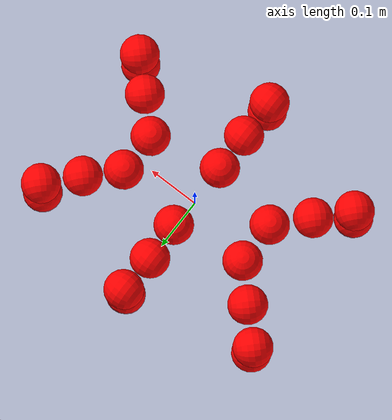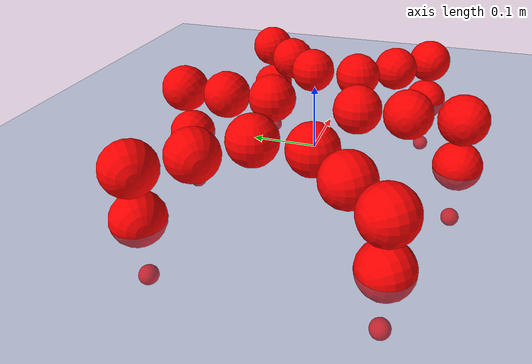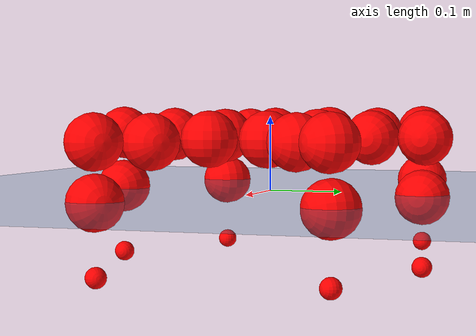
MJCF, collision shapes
<mujoco model="Golem">
  <compiler angle="radian" assetdir="assets" balanceinertia="true" inertiafromgeom="false"/>

  <option timestep="0.005" density="1.2" viscosity="2e-05"/>

  <size nkey="1"/>

  <visual>
    <quality shadowsize="8192"/>
    <map shadowclip="0.5"/>
  </visual>

  <default>
    <default class="/">
      <joint armature="0.01" damping="0.01" frictionloss="0.01"/>
      <geom contype="0" conaffinity="0" group="1" solref="-1000 -80"/>
      <site size="0.01 0.005 0.005" group="5"/>
      <general forcelimited="true" biastype="affine" gainprm="25" biasprm="0 -25 -0.5"/>
      <default class="visual">
        <geom type="mesh" group="2"/>
      </default>
      <default class="collision">
        <geom group="3"/>
      </default>
      <default class="foot">
        <geom size="0.01 0 0" condim="6" group="4" priority="1" solimp="0.015 1 0.01"/>
      </default>
      <default class="reward_collision_sphere">
        <geom group="5" rgba="1 0 0 1"/>
      </default>
    </default>
  </default>

  <asset>
    <texture type="skybox" colorspace="auto" name="//unnamed_texture_0" builtin="gradient" rgb1="0.95 0.95 0.95" rgb2="0.95 0.95 0.95" width="100" height="600"/>
    <texture type="2d" colorspace="auto" name="texplane" builtin="checker" rgb1="0.345 0.575 0.748" rgb2="0.345 0.575 0.748" markrgb="1 1 1" width="512" height="512"/>
    <material name="MatPlane" class="/" texture="texplane" texuniform="true" texrepeat="2 2" specular="0.9"/>
    <mesh name="body" class="/" file="body.stl" scale="0.001 0.001 0.001"/>
    <mesh name="coxa" class="/" file="coxa.stl" scale="0.001 0.001 0.001"/>
    <mesh name="femur" class="/" file="femur.stl" scale="0.001 0.001 0.001"/>
    <mesh name="tibia" class="/" file="tibia.stl" scale="0.001 0.001 0.001"/>
    <mesh name="tarsus" class="/" file="tarsus.stl" scale="0.001 0.001 0.001"/>
  </asset>

  <worldbody>
    <geom name="floor" class="/" size="100 100 0.125" type="plane" group="0" material="MatPlane"/>
    <light name="toplight_shadow" class="/" pos="0 0 5" dir="0.0990148 0.0990148 -0.990148" type="directional" ambient="0.04 0.04 0.04" diffuse="0.55 0.55 0.55" specular="0.12 0.12 0.12"/>
    <light name="toplight_fill" class="/" pos="0 0 5" dir="0.0990148 0.0990148 -0.990148" type="directional" castshadow="false" ambient="0.04 0.04 0.04" diffuse="0.3 0.3 0.3" specular="0.08 0.08 0.08"/>
    <body name="trunk" pos="-0.00281063 0.000523088 -0.000804331" quat="1 0.000571666 -0.000762958 -5.32753e-06">
      <inertial pos="0.00100681 0.00113785 -0.000231131" quat="0.999914 -0.0122762 -0.00251389 -0.00392077" mass="2.72703" diaginertia="0.00468215 0.00192077 0.0203294"/>
      <joint name="//unnamed_joint_0" type="free"/>
      <geom name="//unnamed_geom_1" class="/" pos="0 0 0.0741826" quat="1 0 0 0" type="mesh" rgba="0.9 0.9 0.9 1" mesh="body"/>
      <site name="imu" class="/" pos="0.111338 0.012865 0.103735" size="0.00913838"/>
      <camera name="track" class="/" pos="0 -1.43746 0" quat="0.707107 0.707107 0 0" mode="trackcom"/>
      <camera name="ego_camera" class="/" pos="0.112278 0 0.11591" quat="-0.5 -0.5 0.5 0.5"/>
      <body name="coxa_RR" pos="-0.155208 -0.05728 0.0762452" quat="0.381585 -0.000177341 0.000224482 -0.924334">
        <inertial pos="0.00278363 0.00214839 0.00247864" quat="0.999981 0.00466203 0.0038866 -0.00114939" mass="0.159993" diaginertia="0.00494131 0.00200742 0.0212334"/>
        <joint name="coxa_joint_RR" class="/" pos="0 0 0" axis="0.000148331 0.000842565 -1" range="-3.14206 3.11298" armature="0.00981449" damping="0.0184818" frictionloss="0.00897356"/>
        <geom name="//unnamed_geom_2" class="/" type="mesh" rgba="0.2 0.2 0.2 1" mesh="coxa"/>
        <geom name="//unnamed_geom_3" class="reward_collision_sphere" size="0.0365535" pos="-0.0259103 0 0"/>
        <body name="femur_RR" pos="0.0536492 0.00262682 -0.00159159" quat="0.498683 -0.500503 0.500691 0.50012">
          <inertial pos="0.00224714 0.00187632 -0.000303608" quat="0.999934 0.00988063 -0.00535005 0.00240819" mass="0.151597" diaginertia="0.00482233 0.00191969 0.0207713"/>
          <joint name="femur_joint_RR" class="/" pos="0 0 0" axis="-0.00218832 0.00332482 -0.999992" stiffness="0.0111069" range="-3.08575 3.08335" armature="0.00930656" damping="0.0191213" frictionloss="0.0100426"/>
          <geom name="//unnamed_geom_4" class="/" type="mesh" rgba="0.9 0.9 0.9 1" mesh="femur"/>
          <geom name="//unnamed_geom_5" class="reward_collision_sphere" size="0.0365535"/>
          <body name="tibia_RR" pos="0.00129054 -0.0758833 0.00332942" quat="0.00127499 0.999999 -0.000275721 -0.000426048">
            <inertial pos="-0.00283409 -0.00116829 -0.000826941" quat="0.999947 0.00973196 0.000613723 0.00323838" mass="0.155648" diaginertia="0.00493974 0.00195029 0.0217282"/>
            <joint name="tibia_joint_RR" class="/" pos="0 0 0" axis="0.00770568 -0.0113953 0.999905" stiffness="0.0106966" range="-3.17615 3.14" armature="0.00891718" damping="0.000831931" frictionloss="0.00914318"/>
            <geom name="//unnamed_geom_6" class="/" type="mesh" rgba="0.2 0.2 0.2 1" mesh="tibia"/>
            <geom name="//unnamed_geom_7" class="reward_collision_sphere" size="0.0365535"/>
            <body name="tarsus_RR" pos="0.0740794 0.00274249 -0.000375887" quat="0.999999 0.000291891 0.00122015 -0.000325269">
              <inertial pos="0.0505461 0.00136124 -0.00175875" quat="0.49959 0.498266 0.500324 0.501813" mass="0.156766" diaginertia="0.004956 0.00199149 0.0212688"/>
              <joint name="tarsus_joint_RR" class="/" pos="0 0 0" axis="-0.00416346 -0.00599817 0.999973" range="-3.13127 3.14246" armature="0.00875156" damping="0.0347461" frictionloss="0.00790445"/>
              <geom name="//unnamed_geom_8" class="/" type="mesh" rgba="0.9 0.9 0.9 1" mesh="tarsus"/>
              <geom name="foot_1" class="foot" size="0.00925651" pos="0.0967319 0 0" quat="0 -0.707107 0 0.707107"/>
              <geom name="//unnamed_geom_10" class="reward_collision_sphere" size="0.0365535"/>
              <geom name="//unnamed_geom_11" class="reward_collision_sphere" size="0.0137076" pos="0.0928454 0 0"/>
              <site name="foot_1" class="foot" pos="0.0967319 0 0" quat="0 -0.707107 0 0.707107" size="0.00913838"/>
            </body>
          </body>
        </body>
      </body>
      <body name="coxa_RM" pos="-0.00233269 -0.0935034 0.0753642" quat="0.707063 -4.7017e-05 0.000664916 -0.70715">
        <inertial pos="-0.00224528 -0.000728291 0.000208245" quat="1 5.19373e-05 5.56732e-05 3.09412e-05" mass="0.157184" diaginertia="0.0047924 0.00202821 0.0213984"/>
        <joint name="coxa_joint_RM" class="/" pos="0 0 0" axis="-0.00106146 0.00141265 -0.999998" range="-3.0849 3.12875" armature="0.0104984" damping="0.00908503" frictionloss="0.00908008"/>
        <geom name="//unnamed_geom_12" class="/" type="mesh" rgba="0.2 0.2 0.2 1" mesh="coxa"/>
        <geom name="//unnamed_geom_13" class="reward_collision_sphere" size="0.0365535" pos="-0.0259103 0 0"/>
        <body name="femur_RM" pos="0.0482377 0.0013309 0.00145012" quat="0.501115 -0.500043 0.49961 0.499231">
          <inertial pos="-0.000911918 -0.00281168 0.00168297" quat="0.999967 0.00627899 0.00423658 -0.00283741" mass="0.154485" diaginertia="0.00459556 0.0018732 0.0205506"/>
          <joint name="femur_joint_RM" class="/" pos="0 0 0" axis="0.00157266 -0.000271921 -0.999999" stiffness="0.000856105" range="-3.16917 3.12624" armature="0.0085617" damping="0.0149934" frictionloss="0.00918572"/>
          <geom name="//unnamed_geom_14" class="/" type="mesh" rgba="0.9 0.9 0.9 1" mesh="femur"/>
          <geom name="//unnamed_geom_15" class="reward_collision_sphere" size="0.0365535"/>
          <body name="tibia_RM" pos="-0.00144189 -0.0770561 0.000382055" quat="0.000444419 1 0.000125747 0.000456836">
            <inertial pos="-0.00285655 -0.000619212 -0.000478823" quat="0.999904 -0.0113187 0.00456842 -0.00651133" mass="0.153097" diaginertia="0.00489391 0.00188803 0.0208271"/>
            <joint name="tibia_joint_RM" class="/" pos="0 0 0" axis="0.00117545 -0.00438322 0.99999" range="-3.13678 3.13552" armature="0.00954075" damping="0" frictionloss="0.00889032"/>
            <geom name="//unnamed_geom_16" class="/" type="mesh" rgba="0.2 0.2 0.2 1" mesh="tibia"/>
            <geom name="//unnamed_geom_17" class="reward_collision_sphere" size="0.0365535"/>
            <body name="tarsus_RM" pos="0.0750153 0.000176643 -0.00240032" quat="0.999999 -0.00102584 0.000281334 0.000217626">
              <inertial pos="0.0516355 -0.000860001 -4.96715e-05" quat="0.499639 0.500048 0.495087 0.505175" mass="0.15103" diaginertia="0.00487362 0.00189693 0.0220904"/>
              <joint name="tarsus_joint_RM" class="/" pos="0 0 0" axis="-0.012581 0.00385494 0.999913" range="-3.19629 3.1668" armature="0.00783987" damping="0.00766446" frictionloss="0.00850371"/>
              <geom name="//unnamed_geom_18" class="/" type="mesh" rgba="0.9 0.9 0.9 1" mesh="tarsus"/>
              <geom name="foot_2" class="foot" size="0.00944681" pos="0.0967319 0 0" quat="0 -0.707107 0 0.707107"/>
              <geom name="//unnamed_geom_20" class="reward_collision_sphere" size="0.0365535"/>
              <geom name="//unnamed_geom_21" class="reward_collision_sphere" size="0.0137076" pos="0.0928454 0 0"/>
              <site name="foot_2" class="foot" pos="0.0967319 0 0" quat="0 -0.707107 0 0.707107" size="0.00913838"/>
            </body>
          </body>
        </body>
      </body>
      <body name="coxa_RF" pos="0.151744 -0.0570664 0.074071" quat="0.923823 7.74406e-05 0.00111513 -0.382819">
        <inertial pos="0.00219561 0.00203245 6.69969e-06" quat="0.999998 0.000381814 -0.00181894 -4.99077e-05" mass="0.152001" diaginertia="0.00481417 0.00185802 0.0210235"/>
        <joint name="coxa_joint_RF" class="/" pos="0 0 0" axis="-0.0151855 0.00307508 -0.99988" stiffness="0.00413755" range="-3.09155 3.09888" armature="0.00827757" damping="0.0320683" frictionloss="0.00870424"/>
        <geom name="//unnamed_geom_22" class="/" type="mesh" rgba="0.2 0.2 0.2 1" mesh="coxa"/>
        <geom name="//unnamed_geom_23" class="reward_collision_sphere" size="0.0365535" pos="-0.0259103 0 0"/>
        <body name="femur_RF" pos="0.0537456 0.000342089 -0.00235766" quat="0.499177 -0.499891 0.50021 0.500721">
          <inertial pos="0.000295587 -0.00287759 0.0017208" quat="0.999921 -0.0022309 -0.0105685 -0.00647016" mass="0.154534" diaginertia="0.00471063 0.00187327 0.0199506"/>
          <joint name="femur_joint_RF" class="/" pos="0 0 0" axis="0.00121221 -0.00710622 -0.999974" range="-3.11988 3.08433" armature="0.00985726" damping="0.00427929" frictionloss="0.0104044"/>
          <geom name="//unnamed_geom_24" class="/" type="mesh" rgba="0.9 0.9 0.9 1" mesh="femur"/>
          <geom name="//unnamed_geom_25" class="reward_collision_sphere" size="0.0365535"/>
          <body name="tibia_RF" pos="-0.00143003 -0.0751124 -0.000330993" quat="0.000667145 0.999999 -3.98594e-05 0.000960044">
            <inertial pos="0.000287898 0.000316403 -0.000251581" quat="0.999907 -0.0121577 0.00178173 0.00583455" mass="0.147886" diaginertia="0.0046044 0.0018552 0.0205265"/>
            <joint name="tibia_joint_RF" class="/" pos="0 0 0" axis="0.00216889 0.000610294 0.999997" range="-3.14064 3.17958" armature="0.00875407" damping="0" frictionloss="0.0098062"/>
            <geom name="//unnamed_geom_26" class="/" type="mesh" rgba="0.2 0.2 0.2 1" mesh="tibia"/>
            <geom name="//unnamed_geom_27" class="reward_collision_sphere" size="0.0365535"/>
            <body name="tarsus_RF" pos="0.0750718 -0.000693125 0.000357779" quat="1 0.000617574 -0.000115881 0.000395571">
              <inertial pos="0.0518775 0.000102168 -0.000786759" quat="0.507617 0.497529 0.505064 0.489592" mass="0.14691" diaginertia="0.00466991 0.00187238 0.0196"/>
              <joint name="tarsus_joint_RF" class="/" pos="0 0 0" axis="0.00631472 0.000393672 0.99998" range="-3.14302 3.15828" armature="0.0090593" damping="0.00704163" frictionloss="0.0104049"/>
              <geom name="//unnamed_geom_28" class="/" type="mesh" rgba="0.9 0.9 0.9 1" mesh="tarsus"/>
              <geom name="foot_3" class="foot" size="0.00989849" pos="0.0967319 0 0" quat="0 -0.707107 0 0.707107"/>
              <geom name="//unnamed_geom_30" class="reward_collision_sphere" size="0.0365535"/>
              <geom name="//unnamed_geom_31" class="reward_collision_sphere" size="0.0137076" pos="0.0928454 0 0"/>
              <site name="foot_3" class="foot" pos="0.0967319 0 0" quat="0 -0.707107 0 0.707107" size="0.00913838"/>
            </body>
          </body>
        </body>
      </body>
      <body name="coxa_LR" pos="-0.156298 0.0613416 0.0774698" quat="0.382572 0.0009368 -0.000505697 0.923925">
        <inertial pos="0.000267676 0.000199553 0.00171508" quat="1 -1.27542e-05 -0.000502524 -4.01764e-05" mass="0.147815" diaginertia="0.00464234 0.00189207 0.0204801"/>
        <joint name="coxa_joint_LR" class="/" pos="0 0 0" axis="-0.0086503 -0.0103304 -0.999909" range="-3.08714 3.1386" armature="0.00808148" damping="0.0200838" frictionloss="0.00923831"/>
        <geom name="//unnamed_geom_32" class="/" type="mesh" rgba="0.2 0.2 0.2 1" mesh="coxa"/>
        <geom name="//unnamed_geom_33" class="reward_collision_sphere" size="0.0365535" pos="-0.0259103 0 0"/>
        <body name="femur_LR" pos="0.0541519 -0.001818 -0.00123101" quat="0.499523 -0.50087 0.499954 0.499652">
          <inertial pos="7.61367e-05 0.000839766 0.00223993" quat="0.999951 0.00826272 -0.00267909 -0.0047627" mass="0.1559" diaginertia="0.00496259 0.00185786 0.0216778"/>
          <joint name="femur_joint_LR" class="/" pos="0 0 0" axis="0.000229002 -0.00178642 0.999998" range="-3.18531 3.18531" armature="0.0091322" damping="0" frictionloss="0.00867513"/>
          <geom name="//unnamed_geom_34" class="/" type="mesh" rgba="0.9 0.9 0.9 1" mesh="femur"/>
          <geom name="//unnamed_geom_35" class="reward_collision_sphere" size="0.0365535"/>
          <body name="tibia_LR" pos="-0.00180166 -0.0773838 -0.00139639" quat="-2.52748e-05 1 -0.000235973 0.000258481">
            <inertial pos="-0.00143891 -0.00106141 -0.00196316" quat="0.999993 0.00330234 -0.000229378 -0.00186728" mass="0.152752" diaginertia="0.00486511 0.00199611 0.0203795"/>
            <joint name="tibia_joint_LR" class="/" pos="0 0 0" axis="-0.00169498 0.00156622 -0.999997" range="-3.09865 3.19342" armature="0.00794178" damping="0.00762863" frictionloss="0.00839015"/>
            <geom name="//unnamed_geom_36" class="/" type="mesh" rgba="0.2 0.2 0.2 1" mesh="tibia"/>
            <geom name="//unnamed_geom_37" class="reward_collision_sphere" size="0.0365535"/>
            <body name="tarsus_LR" pos="0.0738793 -0.000904262 0.00111301" quat="1 0.000227395 -1.18872e-05 -0.000101779">
              <inertial pos="0.0521126 0.00124318 0.000970447" quat="0.501179 0.502617 0.49797 0.498218" mass="0.152483" diaginertia="0.00477903 0.00204287 0.0214713"/>
              <joint name="tarsus_joint_LR" class="/" pos="0 0 0" axis="-0.00986518 -0.00246153 -0.999948" stiffness="0.00948148" range="-3.1282 3.08606" armature="0.00923813" damping="0.0282604" frictionloss="0.0103984"/>
              <geom name="//unnamed_geom_38" class="/" type="mesh" rgba="0.9 0.9 0.9 1" mesh="tarsus"/>
              <geom name="foot_4" class="foot" size="0.0095895" pos="0.0967319 0 0" quat="0.707107 0 -0.707107 0"/>
              <geom name="//unnamed_geom_40" class="reward_collision_sphere" size="0.0365535"/>
              <geom name="//unnamed_geom_41" class="reward_collision_sphere" size="0.0137076" pos="0.0928454 0 0"/>
              <site name="foot_4" class="foot" pos="0.0967319 0 0" quat="0.707107 0 -0.707107 0" size="0.00913838"/>
            </body>
          </body>
        </body>
      </body>
      <body name="coxa_LM" pos="0.000197302 0.0919711 0.0755156" quat="0.707616 0.000839182 0.000376417 0.706597">
        <inertial pos="0.00232128 0.00156656 0.00157993" quat="1 0.00055538 3.8219e-05 -8.55114e-05" mass="0.152546" diaginertia="0.00487047 0.00192278 0.0209853"/>
        <joint name="coxa_joint_LM" class="/" pos="0 0 0" axis="0.000146391 0.00135999 -0.999999" range="-3.08401 3.08177" armature="0.0103162" damping="0.00841365" frictionloss="0.0103901"/>
        <geom name="//unnamed_geom_42" class="/" type="mesh" rgba="0.2 0.2 0.2 1" mesh="coxa"/>
        <geom name="//unnamed_geom_43" class="reward_collision_sphere" size="0.0365535" pos="-0.0259103 0 0"/>
        <body name="femur_LM" pos="0.0480287 0.00294202 -0.00177332" quat="0.499204 -0.500403 0.500145 0.500248">
          <inertial pos="-0.00277398 0.00253088 0.00030897" quat="0.999906 0.0108804 0.00354853 0.00751115" mass="0.153627" diaginertia="0.00500936 0.00186441 0.0211919"/>
          <joint name="femur_joint_LM" class="/" pos="0 0 0" axis="0.00669312 -0.000928023 0.999977" stiffness="0.011789" range="-3.10119 3.13814" armature="0.00835215" damping="0" frictionloss="0.00867021"/>
          <geom name="//unnamed_geom_44" class="/" type="mesh" rgba="0.9 0.9 0.9 1" mesh="femur"/>
          <geom name="//unnamed_geom_45" class="reward_collision_sphere" size="0.0365535"/>
          <body name="tibia_LM" pos="-0.000731581 -0.0733736 -0.00254231" quat="2.93846e-05 1 0.000314747 8.57418e-05">
            <inertial pos="0.00133652 0.00172271 0.0025823" quat="0.999973 0.00634189 -0.00358169 -0.00136798" mass="0.150175" diaginertia="0.0046267 0.00190269 0.0205137"/>
            <joint name="tibia_joint_LM" class="/" pos="0 0 0" axis="-0.0053542 0.0139321 -0.999889" range="-3.1709 3.1946" armature="0.00921861" damping="0" frictionloss="0.00787"/>
            <geom name="//unnamed_geom_46" class="/" type="mesh" rgba="0.2 0.2 0.2 1" mesh="tibia"/>
            <geom name="//unnamed_geom_47" class="reward_collision_sphere" size="0.0365535"/>
            <body name="tarsus_LM" pos="0.0784154 -0.00335331 0.00104987" quat="1 -0.000119424 0.000287566 -3.02044e-05">
              <inertial pos="0.0516991 6.4694e-05 0.000257871" quat="0.501895 0.501233 0.489395 0.507306" mass="0.160119" diaginertia="0.00509444 0.00194878 0.0208786"/>
              <joint name="tarsus_joint_LM" class="/" pos="0 0 0" axis="-0.0030112 -0.0104044 -0.999941" stiffness="0.0106465" range="-3.14158 3.08224" armature="0.00934311" damping="0.016302" frictionloss="0.00911581"/>
              <geom name="//unnamed_geom_48" class="/" type="mesh" rgba="0.9 0.9 0.9 1" mesh="tarsus"/>
              <geom name="foot_5" class="foot" size="0.00982385" pos="0.0967319 0 0" quat="0.707107 0 -0.707107 0"/>
              <geom name="//unnamed_geom_50" class="reward_collision_sphere" size="0.0365535"/>
              <geom name="//unnamed_geom_51" class="reward_collision_sphere" size="0.0137076" pos="0.0928454 0 0"/>
              <site name="foot_5" class="foot" pos="0.0967319 0 0" quat="0.707107 0 -0.707107 0" size="0.00913838"/>
            </body>
          </body>
        </body>
      </body>
      <body name="coxa_LF" pos="0.152366 0.0583406 0.0744165" quat="0.923797 -0.00017019 -0.00021628 0.382884">
        <inertial pos="0.000483416 0.000575806 0.000197154" quat="1 0.000416029 0.000248895 0.000168106" mass="0.149423" diaginertia="0.00468126 0.00193165 0.0210257"/>
        <joint name="coxa_joint_LF" class="/" pos="0 0 0" axis="-0.006959 0.00119101 -0.999975" range="-3.16211 3.09315" armature="0.00966076" damping="0.0133879" frictionloss="0.00922392"/>
        <geom name="//unnamed_geom_52" class="/" type="mesh" rgba="0.2 0.2 0.2 1" mesh="coxa"/>
        <geom name="//unnamed_geom_53" class="reward_collision_sphere" size="0.0365535" pos="-0.0259103 0 0"/>
        <body name="femur_LF" pos="0.0488756 0.0016634 -0.00148849" quat="0.499941 -0.499762 0.50057 0.499728">
          <inertial pos="-0.00254792 0.00204928 -0.000896158" quat="0.999998 -5.94094e-05 0.00192145 -2.48612e-05" mass="0.152002" diaginertia="0.00469016 0.00178476 0.019932"/>
          <joint name="femur_joint_LF" class="/" pos="0 0 0" axis="-3.15663e-05 -0.0140235 0.999902" stiffness="0.00925139" range="-3.14521 3.09425" armature="0.00789035" damping="0" frictionloss="0.00915945"/>
          <geom name="//unnamed_geom_54" class="/" type="mesh" rgba="0.9 0.9 0.9 1" mesh="femur"/>
          <geom name="//unnamed_geom_55" class="reward_collision_sphere" size="0.0365535"/>
          <body name="tibia_LF" pos="-0.00158691 -0.0766066 0.00387338" quat="-0.000188582 1 0.000112193 0.000212094">
            <inertial pos="0.00127596 0.00265213 -0.000640828" quat="0.99994 0.00375696 -0.00951468 0.00385103" mass="0.150617" diaginertia="0.00477746 0.00196088 0.0213258"/>
            <joint name="tibia_joint_LF" class="/" pos="0 0 0" axis="0.00275999 -0.00147863 -0.999995" stiffness="0.00203182" range="-3.14123 3.08669" armature="0.00857546" damping="0" frictionloss="0.00926203"/>
            <geom name="//unnamed_geom_56" class="/" type="mesh" rgba="0.2 0.2 0.2 1" mesh="tibia"/>
            <geom name="//unnamed_geom_57" class="reward_collision_sphere" size="0.0365535"/>
            <body name="tarsus_LF" pos="0.0772334 0.00154227 -0.00117585" quat="1 -0.00024206 -0.000626255 8.46084e-05">
              <inertial pos="0.054647 -0.00215825 -0.00118469" quat="0.501913 0.501547 0.499538 0.496987" mass="0.145716" diaginertia="0.00458994 0.00185675 0.0203207"/>
              <joint name="tarsus_joint_LF" class="/" pos="0 0 0" axis="-0.00856877 -0.0080072 -0.999931" range="-3.08995 3.11893" armature="0.00880509" damping="0.0175161" frictionloss="0.00920323"/>
              <geom name="//unnamed_geom_58" class="/" type="mesh" rgba="0.9 0.9 0.9 1" mesh="tarsus"/>
              <geom name="foot_6" class="foot" size="0.00814825" pos="0.0967319 0 0" quat="0.707107 0 -0.707107 0"/>
              <geom name="//unnamed_geom_60" class="reward_collision_sphere" size="0.0365535"/>
              <geom name="//unnamed_geom_61" class="reward_collision_sphere" size="0.0137076" pos="0.0928454 0 0"/>
              <site name="foot_6" class="foot" pos="0.0967319 0 0" quat="0.707107 0 -0.707107 0" size="0.00913838"/>
            </body>
          </body>
        </body>
      </body>
    </body>
  </worldbody>

  <contact>
    <pair class="/" geom1="floor" geom2="foot_1" name="//unnamed_contact_0"/>
    <pair class="/" geom1="floor" geom2="foot_2" name="//unnamed_contact_1"/>
    <pair class="/" geom1="floor" geom2="foot_3" name="//unnamed_contact_2"/>
    <pair class="/" geom1="floor" geom2="foot_4" name="//unnamed_contact_3"/>
    <pair class="/" geom1="floor" geom2="foot_5" name="//unnamed_contact_4"/>
    <pair class="/" geom1="floor" geom2="foot_6" name="//unnamed_contact_5"/>
  </contact>

  <actuator>
    <general name="coxa_joint_RR" class="/" joint="coxa_joint_RR" forcerange="-6.40519 6.40519" gainprm="23.0655" biasprm="0 -23.0655 -0.439033"/>
    <general name="femur_joint_RR" class="/" joint="femur_joint_RR" forcerange="-6.6511 6.6511" gainprm="23.0655" biasprm="0 -23.0655 -0.439033"/>
    <general name="tibia_joint_RR" class="/" joint="tibia_joint_RR" forcerange="-6.5118 6.5118" gainprm="23.0655" biasprm="0 -23.0655 -0.439033"/>
    <general name="tarsus_joint_RR" class="/" joint="tarsus_joint_RR" forcerange="-6.49997 6.49997" gainprm="23.0655" biasprm="0 -23.0655 -0.439033"/>
    <general name="coxa_joint_RM" class="/" joint="coxa_joint_RM" forcerange="-6.41003 6.41003" gainprm="23.0655" biasprm="0 -23.0655 -0.439033"/>
    <general name="femur_joint_RM" class="/" joint="femur_joint_RM" forcerange="-5.98794 5.98794" gainprm="23.0655" biasprm="0 -23.0655 -0.439033"/>
    <general name="tibia_joint_RM" class="/" joint="tibia_joint_RM" forcerange="-6.71368 6.71368" gainprm="23.0655" biasprm="0 -23.0655 -0.439033"/>
    <general name="tarsus_joint_RM" class="/" joint="tarsus_joint_RM" forcerange="-7.05453 7.05453" gainprm="23.0655" biasprm="0 -23.0655 -0.439033"/>
    <general name="coxa_joint_RF" class="/" joint="coxa_joint_RF" forcerange="-6.0152 6.0152" gainprm="23.0655" biasprm="0 -23.0655 -0.439033"/>
    <general name="femur_joint_RF" class="/" joint="femur_joint_RF" forcerange="-5.97272 5.97272" gainprm="23.0655" biasprm="0 -23.0655 -0.439033"/>
    <general name="tibia_joint_RF" class="/" joint="tibia_joint_RF" forcerange="-7.37831 7.37831" gainprm="23.0655" biasprm="0 -23.0655 -0.439033"/>
    <general name="tarsus_joint_RF" class="/" joint="tarsus_joint_RF" forcerange="-7.20371 7.20371" gainprm="23.0655" biasprm="0 -23.0655 -0.439033"/>
    <general name="coxa_joint_LR" class="/" joint="coxa_joint_LR" forcerange="-6.92696 6.92696" gainprm="23.0655" biasprm="0 -23.0655 -0.439033"/>
    <general name="femur_joint_LR" class="/" joint="femur_joint_LR" forcerange="-6.02518 6.02518" gainprm="23.0655" biasprm="0 -23.0655 -0.439033"/>
    <general name="tibia_joint_LR" class="/" joint="tibia_joint_LR" forcerange="-6.17395 6.17395" gainprm="23.0655" biasprm="0 -23.0655 -0.439033"/>
    <general name="tarsus_joint_LR" class="/" joint="tarsus_joint_LR" forcerange="-7.08479 7.08479" gainprm="23.0655" biasprm="0 -23.0655 -0.439033"/>
    <general name="coxa_joint_LM" class="/" joint="coxa_joint_LM" forcerange="-7.29225 7.29225" gainprm="23.0655" biasprm="0 -23.0655 -0.439033"/>
    <general name="femur_joint_LM" class="/" joint="femur_joint_LM" forcerange="-6.80556 6.80556" gainprm="23.0655" biasprm="0 -23.0655 -0.439033"/>
    <general name="tibia_joint_LM" class="/" joint="tibia_joint_LM" forcerange="-6.7353 6.7353" gainprm="23.0655" biasprm="0 -23.0655 -0.439033"/>
    <general name="tarsus_joint_LM" class="/" joint="tarsus_joint_LM" forcerange="-6.18961 6.18961" gainprm="23.0655" biasprm="0 -23.0655 -0.439033"/>
    <general name="coxa_joint_LF" class="/" joint="coxa_joint_LF" forcerange="-6.67679 6.67679" gainprm="23.0655" biasprm="0 -23.0655 -0.439033"/>
    <general name="femur_joint_LF" class="/" joint="femur_joint_LF" forcerange="-6.70734 6.70734" gainprm="23.0655" biasprm="0 -23.0655 -0.439033"/>
    <general name="tibia_joint_LF" class="/" joint="tibia_joint_LF" forcerange="-7.04715 7.04715" gainprm="23.0655" biasprm="0 -23.0655 -0.439033"/>
    <general name="tarsus_joint_LF" class="/" joint="tarsus_joint_LF" forcerange="-6.93805 6.93805" gainprm="23.0655" biasprm="0 -23.0655 -0.439033"/>
  </actuator>

  <sensor>
    <gyro site="imu" name="imu_angular_velocity"/>
    <velocimeter site="imu" name="imu_linear_velocity"/>
    <framelinvel objtype="site" objname="foot_1" name="foot_1_global_linear_velocity"/>
    <framelinvel objtype="site" objname="foot_2" name="foot_2_global_linear_velocity"/>
    <framelinvel objtype="site" objname="foot_3" name="foot_3_global_linear_velocity"/>
    <framelinvel objtype="site" objname="foot_4" name="foot_4_global_linear_velocity"/>
    <framelinvel objtype="site" objname="foot_5" name="foot_5_global_linear_velocity"/>
    <framelinvel objtype="site" objname="foot_6" name="foot_6_global_linear_velocity"/>
  </sensor>

  <keyframe>
    <key name="home" qpos="0 0 0.1457 1 0 0 0 0 0 0 0 0 0 0 0 0 0 0 0 0 0 0 0 0 0 0 0 0 0 0 0"/>
  </keyframe>
</mujoco>
